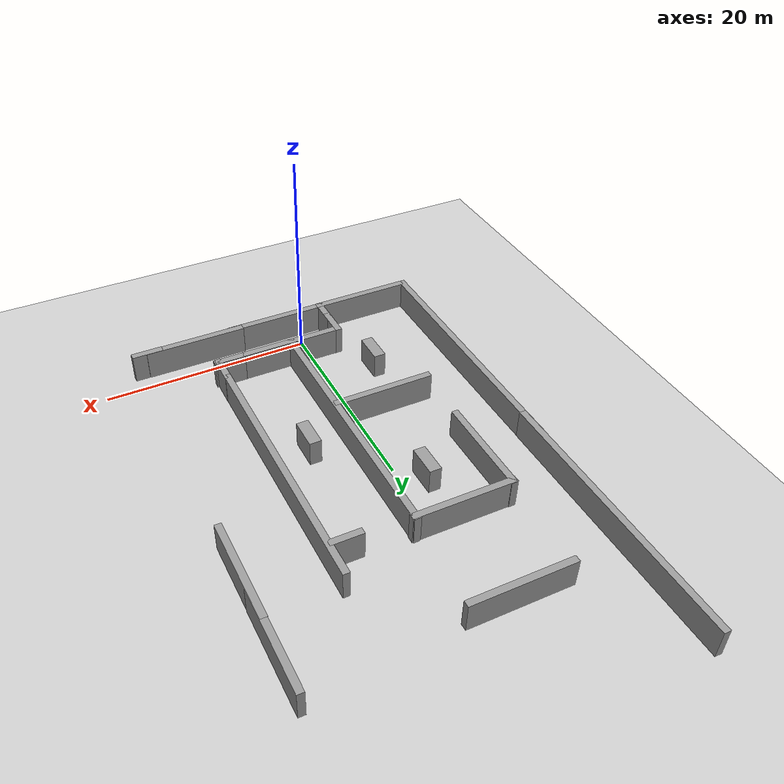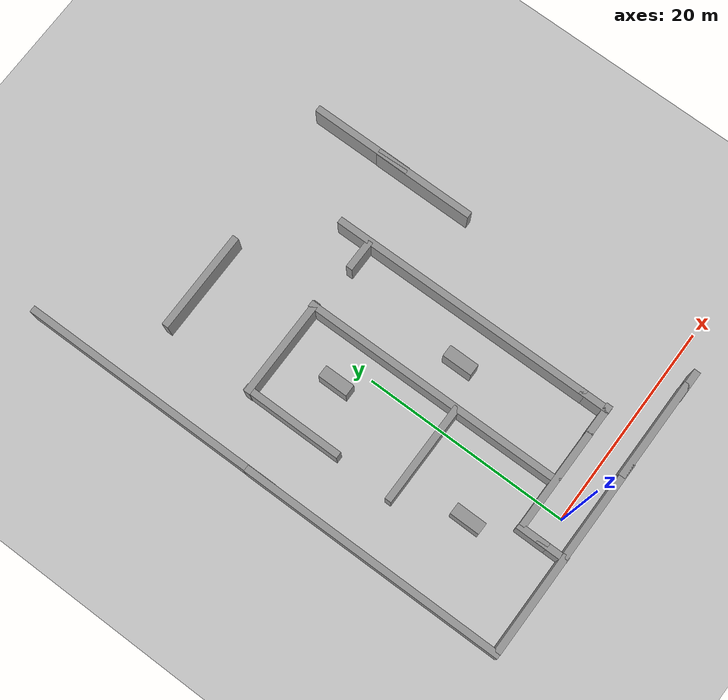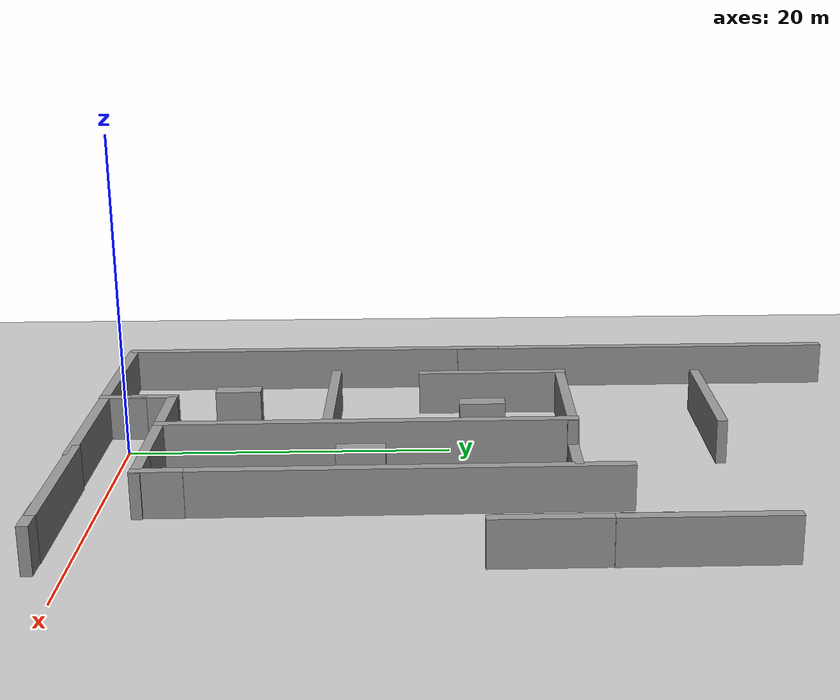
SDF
<sdf version="1.7">
 <world name="default">
  <model name="ground_plane">
   <static>1</static>
   <link name="link">
    <collision name="collision">
     <geometry><plane><normal>0 0 1</normal><size>100 100</size></plane></geometry>
     <surface><friction><ode><mu>100</mu><mu2>50</mu2></ode></friction></surface>
    </collision>
    <visual name="visual">
     <cast_shadows>0</cast_shadows>
     <geometry><plane><normal>0 0 1</normal><size>100 100</size></plane></geometry>
     <material>
      <script><uri>file://media/materials/scripts/gazebo.material</uri><name>Gazebo/Grey</name></script>
     </material>
    </visual>
   </link>
  </model>
  <model name="grey_wall_hou">
   <link name="link">
    <pose>0 0 1.37589 0 -0 0</pose>
    <inertial>
     <inertia><ixx>0</ixx><ixy>0</ixy><ixz>0</ixz><iyy>0</iyy><iyz>0</iyz><izz>0</izz></inertia>
     <mass>0</mass>
    </inertial>
    <visual name="visual">
     <cast_shadows>0</cast_shadows>
     <geometry><box><size>9.82221 0.642976 2.8</size></box></geometry>
     <material>
      <script>
       <uri>model://grey_wall/materials/scripts</uri>
       <uri>model://grey_wall/materials/textures</uri>
       <name>vrc/grey_wall</name>
      </script>
      <shader type="pixel"><normal_map>__default__</normal_map></shader>
      <ambient>1 1 1 1</ambient>
      <diffuse>1 1 1 1</diffuse>
      <specular>0 0 0 1</specular>
      <emissive>0 0 0 1</emissive>
     </material>
    </visual>
    <collision name="collision">
     <geometry><box><size>9.82221 0.642976 2.8</size></box></geometry>
     <surface>
      <friction>
       <ode><mu>1</mu><mu2>1</mu2><fdir1>0 0 0</fdir1><slip1>0</slip1><slip2>0</slip2></ode>
       <torsional>
        <coefficient>1</coefficient>
        <patch_radius>0</patch_radius>
        <surface_radius>0</surface_radius>
        <use_patch_radius>1</use_patch_radius>
        <ode><slip>0</slip></ode>
       </torsional>
      </friction>
      <bounce><restitution_coefficient>0</restitution_coefficient><threshold>1e+06</threshold></bounce>
      <contact>
       <collide_without_contact>0</collide_without_contact>
       <collide_without_contact_bitmask>1</collide_without_contact_bitmask>
       <collide_bitmask>1</collide_bitmask>
       <ode>
        <soft_cfm>0</soft_cfm>
        <soft_erp>0.2</soft_erp>
        <kp>1e+13</kp>
        <kd>1</kd>
        <max_vel>0.01</max_vel>
        <min_depth>0</min_depth>
       </ode>
       <bullet>
        <split_impulse>1</split_impulse>
        <split_impulse_penetration_threshold>-0.01</split_impulse_penetration_threshold>
        <soft_cfm>0</soft_cfm>
        <soft_erp>0.2</soft_erp>
        <kp>1e+13</kp>
        <kd>1</kd>
       </bullet>
      </contact>
     </surface>
    </collision>
   </link>
   <static>1</static>
   <pose>2.05548 -1.91312 0 0 -0 0</pose>
  </model>
  <model name="grey_wall_hou_clone_clone">
   <link name="link">
    <pose>0 0 1.37589 0 -0 0</pose>
    <inertial>
     <inertia><ixx>0</ixx><ixy>0</ixy><ixz>0</ixz><iyy>0</iyy><iyz>0</iyz><izz>0</izz></inertia>
     <mass>0</mass>
    </inertial>
    <visual name="visual">
     <cast_shadows>0</cast_shadows>
     <geometry><box><size>9.82221 0.642976 2.8</size></box></geometry>
     <material>
      <script>
       <uri>model://grey_wall/materials/scripts</uri>
       <uri>model://grey_wall/materials/textures</uri>
       <name>vrc/grey_wall</name>
      </script>
      <shader type="pixel"><normal_map>__default__</normal_map></shader>
      <ambient>1 1 1 1</ambient>
      <diffuse>1 1 1 1</diffuse>
      <specular>0 0 0 1</specular>
      <emissive>0 0 0 1</emissive>
     </material>
    </visual>
    <collision name="collision">
     <geometry><box><size>9.82221 0.642976 2.8</size></box></geometry>
     <surface>
      <friction>
       <ode><mu>1</mu><mu2>1</mu2><fdir1>0 0 0</fdir1><slip1>0</slip1><slip2>0</slip2></ode>
       <torsional>
        <coefficient>1</coefficient>
        <patch_radius>0</patch_radius>
        <surface_radius>0</surface_radius>
        <use_patch_radius>1</use_patch_radius>
        <ode><slip>0</slip></ode>
       </torsional>
      </friction>
      <bounce><restitution_coefficient>0</restitution_coefficient><threshold>1e+06</threshold></bounce>
      <contact>
       <collide_without_contact>0</collide_without_contact>
       <collide_without_contact_bitmask>1</collide_without_contact_bitmask>
       <collide_bitmask>1</collide_bitmask>
       <ode>
        <soft_cfm>0</soft_cfm>
        <soft_erp>0.2</soft_erp>
        <kp>1e+13</kp>
        <kd>1</kd>
        <max_vel>0.01</max_vel>
        <min_depth>0</min_depth>
       </ode>
       <bullet>
        <split_impulse>1</split_impulse>
        <split_impulse_penetration_threshold>-0.01</split_impulse_penetration_threshold>
        <soft_cfm>0</soft_cfm>
        <soft_erp>0.2</soft_erp>
        <kp>1e+13</kp>
        <kd>1</kd>
       </bullet>
      </contact>
     </surface>
    </collision>
   </link>
   <static>1</static>
   <pose>2.12702 2.37014 0 0 -0 0</pose>
  </model>
  <model name="grey_wall_short">
   <link name="link">
    <pose>0 0 1.37589 0 -0 0</pose>
    <inertial>
     <inertia><ixx>0</ixx><ixy>0</ixy><ixz>0</ixz><iyy>0</iyy><iyz>0</iyz><izz>0</izz></inertia>
     <mass>0</mass>
    </inertial>
    <visual name="visual">
     <cast_shadows>0</cast_shadows>
     <geometry><box><size>3.01651 0.642976 2.8</size></box></geometry>
     <material>
      <script>
       <uri>model://grey_wall/materials/scripts</uri>
       <uri>model://grey_wall/materials/textures</uri>
       <name>vrc/grey_wall</name>
      </script>
      <shader type="pixel"><normal_map>__default__</normal_map></shader>
      <ambient>1 1 1 1</ambient>
      <diffuse>1 1 1 1</diffuse>
      <specular>0 0 0 1</specular>
      <emissive>0 0 0 1</emissive>
     </material>
    </visual>
    <collision name="collision">
     <geometry><box><size>3.01651 0.642976 2.8</size></box></geometry>
     <surface>
      <friction>
       <ode><mu>1</mu><mu2>1</mu2><fdir1>0 0 0</fdir1><slip1>0</slip1><slip2>0</slip2></ode>
       <torsional>
        <coefficient>1</coefficient>
        <patch_radius>0</patch_radius>
        <surface_radius>0</surface_radius>
        <use_patch_radius>1</use_patch_radius>
        <ode><slip>0</slip></ode>
       </torsional>
      </friction>
      <bounce><restitution_coefficient>0</restitution_coefficient><threshold>1e+06</threshold></bounce>
      <contact>
       <collide_without_contact>0</collide_without_contact>
       <collide_without_contact_bitmask>1</collide_without_contact_bitmask>
       <collide_bitmask>1</collide_bitmask>
       <ode>
        <soft_cfm>0</soft_cfm>
        <soft_erp>0.2</soft_erp>
        <kp>1e+13</kp>
        <kd>1</kd>
        <max_vel>0.01</max_vel>
        <min_depth>0</min_depth>
       </ode>
       <bullet>
        <split_impulse>1</split_impulse>
        <split_impulse_penetration_threshold>-0.01</split_impulse_penetration_threshold>
        <soft_cfm>0</soft_cfm>
        <soft_erp>0.2</soft_erp>
        <kp>1e+13</kp>
        <kd>1</kd>
       </bullet>
      </contact>
     </surface>
    </collision>
   </link>
   <static>1</static>
   <pose>8.42725 2.39613 0 0 -0 0</pose>
  </model>
  <model name="grey_wall_short_clone">
   <link name="link">
    <pose>0 0 1.37589 0 -0 0</pose>
    <inertial>
     <inertia><ixx>0</ixx><ixy>0</ixy><ixz>0</ixz><iyy>0</iyy><iyz>0</iyz><izz>0</izz></inertia>
     <mass>0</mass>
    </inertial>
    <visual name="visual">
     <cast_shadows>0</cast_shadows>
     <geometry><box><size>3.01651 0.642976 2.8</size></box></geometry>
     <material>
      <script>
       <uri>model://grey_wall/materials/scripts</uri>
       <uri>model://grey_wall/materials/textures</uri>
       <name>vrc/grey_wall</name>
      </script>
      <shader type="pixel"><normal_map>__default__</normal_map></shader>
      <ambient>1 1 1 1</ambient>
      <diffuse>1 1 1 1</diffuse>
      <specular>0 0 0 1</specular>
      <emissive>0 0 0 1</emissive>
     </material>
    </visual>
    <collision name="collision">
     <geometry><box><size>3.01651 0.642976 2.8</size></box></geometry>
     <surface>
      <friction>
       <ode><mu>1</mu><mu2>1</mu2><fdir1>0 0 0</fdir1><slip1>0</slip1><slip2>0</slip2></ode>
       <torsional>
        <coefficient>1</coefficient>
        <patch_radius>0</patch_radius>
        <surface_radius>0</surface_radius>
        <use_patch_radius>1</use_patch_radius>
        <ode><slip>0</slip></ode>
       </torsional>
      </friction>
      <bounce><restitution_coefficient>0</restitution_coefficient><threshold>1e+06</threshold></bounce>
      <contact>
       <collide_without_contact>0</collide_without_contact>
       <collide_without_contact_bitmask>1</collide_without_contact_bitmask>
       <collide_bitmask>1</collide_bitmask>
       <ode>
        <soft_cfm>0</soft_cfm>
        <soft_erp>0.2</soft_erp>
        <kp>1e+13</kp>
        <kd>1</kd>
        <max_vel>0.01</max_vel>
        <min_depth>0</min_depth>
       </ode>
       <bullet>
        <split_impulse>1</split_impulse>
        <split_impulse_penetration_threshold>-0.01</split_impulse_penetration_threshold>
        <soft_cfm>0</soft_cfm>
        <soft_erp>0.2</soft_erp>
        <kp>1e+13</kp>
        <kd>1</kd>
       </bullet>
      </contact>
     </surface>
    </collision>
   </link>
   <static>1</static>
   <pose>7.84417 27.1476 0 0 -0 0</pose>
  </model>
  <model name="grey_wall_short_0_clone_1">
   <link name="link">
    <pose>0 0 1.37589 0 -0 0</pose>
    <inertial>
     <inertia><ixx>0</ixx><ixy>0</ixy><ixz>0</ixz><iyy>0</iyy><iyz>0</iyz><izz>0</izz></inertia>
     <mass>0</mass>
    </inertial>
    <visual name="visual">
     <cast_shadows>0</cast_shadows>
     <geometry><box><size>3.01651 0.642976 2.8</size></box></geometry>
     <material>
      <script>
       <uri>model://grey_wall/materials/scripts</uri>
       <uri>model://grey_wall/materials/textures</uri>
       <name>vrc/grey_wall</name>
      </script>
      <shader type="pixel"><normal_map>__default__</normal_map></shader>
      <ambient>1 1 1 1</ambient>
      <diffuse>1 1 1 1</diffuse>
      <specular>0 0 0 1</specular>
      <emissive>0 0 0 1</emissive>
     </material>
    </visual>
    <collision name="collision">
     <geometry><box><size>3.01651 0.642976 2.8</size></box></geometry>
     <surface>
      <friction>
       <ode><mu>1</mu><mu2>1</mu2><fdir1>0 0 0</fdir1><slip1>0</slip1><slip2>0</slip2></ode>
       <torsional>
        <coefficient>1</coefficient>
        <patch_radius>0</patch_radius>
        <surface_radius>0</surface_radius>
        <use_patch_radius>1</use_patch_radius>
        <ode><slip>0</slip></ode>
       </torsional>
      </friction>
      <bounce><restitution_coefficient>0</restitution_coefficient><threshold>1e+06</threshold></bounce>
      <contact>
       <collide_without_contact>0</collide_without_contact>
       <collide_without_contact_bitmask>1</collide_without_contact_bitmask>
       <collide_bitmask>1</collide_bitmask>
       <ode>
        <soft_cfm>0</soft_cfm>
        <soft_erp>0.2</soft_erp>
        <kp>1e+13</kp>
        <kd>1</kd>
        <max_vel>0.01</max_vel>
        <min_depth>0</min_depth>
       </ode>
       <bullet>
        <split_impulse>1</split_impulse>
        <split_impulse_penetration_threshold>-0.01</split_impulse_penetration_threshold>
        <soft_cfm>0</soft_cfm>
        <soft_erp>0.2</soft_erp>
        <kp>1e+13</kp>
        <kd>1</kd>
       </bullet>
      </contact>
     </surface>
    </collision>
   </link>
   <static>1</static>
   <pose>9.47315 3.55431 0 0 0 -1.57204</pose>
  </model>
  <model name="grey_wall_long_clone_0_clone_0">
   <link name="link">
    <pose>0 0 1.37589 0 -0 0</pose>
    <inertial>
     <inertia><ixx>0</ixx><ixy>0</ixy><ixz>0</ixz><iyy>0</iyy><iyz>0</iyz><izz>0</izz></inertia>
     <mass>0</mass>
    </inertial>
    <visual name="visual">
     <cast_shadows>0</cast_shadows>
     <geometry><box><size>25.8815 0.642976 2.8</size></box></geometry>
     <material>
      <script>
       <uri>model://grey_wall/materials/scripts</uri>
       <uri>model://grey_wall/materials/textures</uri>
       <name>vrc/grey_wall</name>
      </script>
      <shader type="pixel"><normal_map>__default__</normal_map></shader>
      <ambient>1 1 1 1</ambient>
      <diffuse>1 1 1 1</diffuse>
      <specular>0 0 0 1</specular>
      <emissive>0 0 0 1</emissive>
     </material>
    </visual>
    <collision name="collision">
     <geometry><box><size>25.8815 0.642976 2.8</size></box></geometry>
     <surface>
      <friction>
       <ode><mu>1</mu><mu2>1</mu2><fdir1>0 0 0</fdir1><slip1>0</slip1><slip2>0</slip2></ode>
       <torsional>
        <coefficient>1</coefficient>
        <patch_radius>0</patch_radius>
        <surface_radius>0</surface_radius>
        <use_patch_radius>1</use_patch_radius>
        <ode><slip>0</slip></ode>
       </torsional>
      </friction>
      <bounce><restitution_coefficient>0</restitution_coefficient><threshold>1e+06</threshold></bounce>
      <contact>
       <collide_without_contact>0</collide_without_contact>
       <collide_without_contact_bitmask>1</collide_without_contact_bitmask>
       <collide_bitmask>1</collide_bitmask>
       <ode>
        <soft_cfm>0</soft_cfm>
        <soft_erp>0.2</soft_erp>
        <kp>1e+13</kp>
        <kd>1</kd>
        <max_vel>0.01</max_vel>
        <min_depth>0</min_depth>
       </ode>
       <bullet>
        <split_impulse>1</split_impulse>
        <split_impulse_penetration_threshold>-0.01</split_impulse_penetration_threshold>
        <soft_cfm>0</soft_cfm>
        <soft_erp>0.2</soft_erp>
        <kp>1e+13</kp>
        <kd>1</kd>
       </bullet>
      </contact>
     </surface>
    </collision>
   </link>
   <static>1</static>
   <pose>-12.5138 10.6927 0 0 0 -1.5658</pose>
  </model>
  <model name="grey_wall_long_clone_0_clone_0_clone">
   <link name="link">
    <pose>0 0 1.37589 0 -0 0</pose>
    <inertial>
     <inertia><ixx>0</ixx><ixy>0</ixy><ixz>0</ixz><iyy>0</iyy><iyz>0</iyz><izz>0</izz></inertia>
     <mass>0</mass>
    </inertial>
    <visual name="visual">
     <cast_shadows>0</cast_shadows>
     <geometry><box><size>25.8815 0.642976 2.8</size></box></geometry>
     <material>
      <script>
       <uri>model://grey_wall/materials/scripts</uri>
       <uri>model://grey_wall/materials/textures</uri>
       <name>vrc/grey_wall</name>
      </script>
      <shader type="pixel"><normal_map>__default__</normal_map></shader>
      <ambient>1 1 1 1</ambient>
      <diffuse>1 1 1 1</diffuse>
      <specular>0 0 0 1</specular>
      <emissive>0 0 0 1</emissive>
     </material>
    </visual>
    <collision name="collision">
     <geometry><box><size>25.8815 0.642976 2.8</size></box></geometry>
     <surface>
      <friction>
       <ode><mu>1</mu><mu2>1</mu2><fdir1>0 0 0</fdir1><slip1>0</slip1><slip2>0</slip2></ode>
       <torsional>
        <coefficient>1</coefficient>
        <patch_radius>0</patch_radius>
        <surface_radius>0</surface_radius>
        <use_patch_radius>1</use_patch_radius>
        <ode><slip>0</slip></ode>
       </torsional>
      </friction>
      <bounce><restitution_coefficient>0</restitution_coefficient><threshold>1e+06</threshold></bounce>
      <contact>
       <collide_without_contact>0</collide_without_contact>
       <collide_without_contact_bitmask>1</collide_without_contact_bitmask>
       <collide_bitmask>1</collide_bitmask>
       <ode>
        <soft_cfm>0</soft_cfm>
        <soft_erp>0.2</soft_erp>
        <kp>1e+13</kp>
        <kd>1</kd>
        <max_vel>0.01</max_vel>
        <min_depth>0</min_depth>
       </ode>
       <bullet>
        <split_impulse>1</split_impulse>
        <split_impulse_penetration_threshold>-0.01</split_impulse_penetration_threshold>
        <soft_cfm>0</soft_cfm>
        <soft_erp>0.2</soft_erp>
        <kp>1e+13</kp>
        <kd>1</kd>
       </bullet>
      </contact>
     </surface>
    </collision>
   </link>
   <static>1</static>
   <pose>9.39866 17.4791 0 0 0 -1.5658</pose>
  </model>
  <model name="grey_wall_hou_clone">
   <link name="link">
    <pose>0 0 1.37589 0 -0 0</pose>
    <inertial>
     <inertia><ixx>0</ixx><ixy>0</ixy><ixz>0</ixz><iyy>0</iyy><iyz>0</iyz><izz>0</izz></inertia>
     <mass>0</mass>
    </inertial>
    <visual name="visual">
     <cast_shadows>0</cast_shadows>
     <geometry><box><size>9.82221 0.642976 2.8</size></box></geometry>
     <material>
      <script>
       <uri>model://grey_wall/materials/scripts</uri>
       <uri>model://grey_wall/materials/textures</uri>
       <name>vrc/grey_wall</name>
      </script>
      <shader type="pixel"><normal_map>__default__</normal_map></shader>
      <ambient>1 1 1 1</ambient>
      <diffuse>1 1 1 1</diffuse>
      <specular>0 0 0 1</specular>
      <emissive>0 0 0 1</emissive>
     </material>
    </visual>
    <collision name="collision">
     <geometry><box><size>9.82221 0.642976 2.8</size></box></geometry>
     <surface>
      <friction>
       <ode><mu>1</mu><mu2>1</mu2><fdir1>0 0 0</fdir1><slip1>0</slip1><slip2>0</slip2></ode>
       <torsional>
        <coefficient>1</coefficient>
        <patch_radius>0</patch_radius>
        <surface_radius>0</surface_radius>
        <use_patch_radius>1</use_patch_radius>
        <ode><slip>0</slip></ode>
       </torsional>
      </friction>
      <bounce><restitution_coefficient>0</restitution_coefficient><threshold>1e+06</threshold></bounce>
      <contact>
       <collide_without_contact>0</collide_without_contact>
       <collide_without_contact_bitmask>1</collide_without_contact_bitmask>
       <collide_bitmask>1</collide_bitmask>
       <ode>
        <soft_cfm>0</soft_cfm>
        <soft_erp>0.2</soft_erp>
        <kp>1e+13</kp>
        <kd>1</kd>
        <max_vel>0.01</max_vel>
        <min_depth>0</min_depth>
       </ode>
       <bullet>
        <split_impulse>1</split_impulse>
        <split_impulse_penetration_threshold>-0.01</split_impulse_penetration_threshold>
        <soft_cfm>0</soft_cfm>
        <soft_erp>0.2</soft_erp>
        <kp>1e+13</kp>
        <kd>1</kd>
       </bullet>
      </contact>
     </surface>
    </collision>
   </link>
   <static>1</static>
   <pose>-7.44149 -1.94811 0 0 -0 0</pose>
  </model>
  <model name="grey_wall_short_0_clone_1_clone_0">
   <link name="link">
    <pose>0 0 1.37589 0 -0 0</pose>
    <inertial>
     <inertia><ixx>0</ixx><ixy>0</ixy><ixz>0</ixz><iyy>0</iyy><iyz>0</iyz><izz>0</izz></inertia>
     <mass>0</mass>
    </inertial>
    <visual name="visual">
     <cast_shadows>0</cast_shadows>
     <geometry><box><size>3.01651 0.642976 2.8</size></box></geometry>
     <material>
      <script>
       <uri>model://grey_wall/materials/scripts</uri>
       <uri>model://grey_wall/materials/textures</uri>
       <name>vrc/grey_wall</name>
      </script>
      <shader type="pixel"><normal_map>__default__</normal_map></shader>
      <ambient>1 1 1 1</ambient>
      <diffuse>1 1 1 1</diffuse>
      <specular>0 0 0 1</specular>
      <emissive>0 0 0 1</emissive>
     </material>
    </visual>
    <collision name="collision">
     <geometry><box><size>3.01651 0.642976 2.8</size></box></geometry>
     <surface>
      <friction>
       <ode><mu>1</mu><mu2>1</mu2><fdir1>0 0 0</fdir1><slip1>0</slip1><slip2>0</slip2></ode>
       <torsional>
        <coefficient>1</coefficient>
        <patch_radius>0</patch_radius>
        <surface_radius>0</surface_radius>
        <use_patch_radius>1</use_patch_radius>
        <ode><slip>0</slip></ode>
       </torsional>
      </friction>
      <bounce><restitution_coefficient>0</restitution_coefficient><threshold>1e+06</threshold></bounce>
      <contact>
       <collide_without_contact>0</collide_without_contact>
       <collide_without_contact_bitmask>1</collide_without_contact_bitmask>
       <collide_bitmask>1</collide_bitmask>
       <ode>
        <soft_cfm>0</soft_cfm>
        <soft_erp>0.2</soft_erp>
        <kp>1e+13</kp>
        <kd>1</kd>
        <max_vel>0.01</max_vel>
        <min_depth>0</min_depth>
       </ode>
       <bullet>
        <split_impulse>1</split_impulse>
        <split_impulse_penetration_threshold>-0.01</split_impulse_penetration_threshold>
        <soft_cfm>0</soft_cfm>
        <soft_erp>0.2</soft_erp>
        <kp>1e+13</kp>
        <kd>1</kd>
       </bullet>
      </contact>
     </surface>
    </collision>
   </link>
   <static>1</static>
   <pose>-2.88969 1.20993 0 0 0 -1.57204</pose>
  </model>
  <model name="grey_wall_short_0_clone_1_clone_1">
   <link name="link">
    <pose>0 0 1.37589 0 -0 0</pose>
    <inertial>
     <inertia><ixx>0</ixx><ixy>0</ixy><ixz>0</ixz><iyy>0</iyy><iyz>0</iyz><izz>0</izz></inertia>
     <mass>0</mass>
    </inertial>
    <visual name="visual">
     <cast_shadows>0</cast_shadows>
     <geometry><box><size>3.01651 0.642976 2.8</size></box></geometry>
     <material>
      <script>
       <uri>model://grey_wall/materials/scripts</uri>
       <uri>model://grey_wall/materials/textures</uri>
       <name>vrc/grey_wall</name>
      </script>
      <shader type="pixel"><normal_map>__default__</normal_map></shader>
      <ambient>1 1 1 1</ambient>
      <diffuse>1 1 1 1</diffuse>
      <specular>0 0 0 1</specular>
      <emissive>0 0 0 1</emissive>
     </material>
    </visual>
    <collision name="collision">
     <geometry><box><size>3.01651 0.642976 2.8</size></box></geometry>
     <surface>
      <friction>
       <ode><mu>1</mu><mu2>1</mu2><fdir1>0 0 0</fdir1><slip1>0</slip1><slip2>0</slip2></ode>
       <torsional>
        <coefficient>1</coefficient>
        <patch_radius>0</patch_radius>
        <surface_radius>0</surface_radius>
        <use_patch_radius>1</use_patch_radius>
        <ode><slip>0</slip></ode>
       </torsional>
      </friction>
      <bounce><restitution_coefficient>0</restitution_coefficient><threshold>1e+06</threshold></bounce>
      <contact>
       <collide_without_contact>0</collide_without_contact>
       <collide_without_contact_bitmask>1</collide_without_contact_bitmask>
       <collide_bitmask>1</collide_bitmask>
       <ode>
        <soft_cfm>0</soft_cfm>
        <soft_erp>0.2</soft_erp>
        <kp>1e+13</kp>
        <kd>1</kd>
        <max_vel>0.01</max_vel>
        <min_depth>0</min_depth>
       </ode>
       <bullet>
        <split_impulse>1</split_impulse>
        <split_impulse_penetration_threshold>-0.01</split_impulse_penetration_threshold>
        <soft_cfm>0</soft_cfm>
        <soft_erp>0.2</soft_erp>
        <kp>1e+13</kp>
        <kd>1</kd>
       </bullet>
      </contact>
     </surface>
    </collision>
   </link>
   <static>1</static>
   <pose>-2.88201 -0.774232 0 0 0 -1.57204</pose>
  </model>
  <model name="grey_wall_long_clone_0_clone_0_clone_clone_0">
   <link name="link">
    <pose>0 0 1.37589 0 -0 0</pose>
    <inertial>
     <inertia><ixx>0</ixx><ixy>0</ixy><ixz>0</ixz><iyy>0</iyy><iyz>0</iyz><izz>0</izz></inertia>
     <mass>0</mass>
    </inertial>
    <visual name="visual">
     <cast_shadows>0</cast_shadows>
     <geometry><box><size>25.8815 0.642976 2.8</size></box></geometry>
     <material>
      <script>
       <uri>model://grey_wall/materials/scripts</uri>
       <uri>model://grey_wall/materials/textures</uri>
       <name>vrc/grey_wall</name>
      </script>
      <shader type="pixel"><normal_map>__default__</normal_map></shader>
      <ambient>1 1 1 1</ambient>
      <diffuse>1 1 1 1</diffuse>
      <specular>0 0 0 1</specular>
      <emissive>0 0 0 1</emissive>
     </material>
    </visual>
    <collision name="collision">
     <geometry><box><size>25.8815 0.642976 2.8</size></box></geometry>
     <surface>
      <friction>
       <ode><mu>1</mu><mu2>1</mu2><fdir1>0 0 0</fdir1><slip1>0</slip1><slip2>0</slip2></ode>
       <torsional>
        <coefficient>1</coefficient>
        <patch_radius>0</patch_radius>
        <surface_radius>0</surface_radius>
        <use_patch_radius>1</use_patch_radius>
        <ode><slip>0</slip></ode>
       </torsional>
      </friction>
      <bounce><restitution_coefficient>0</restitution_coefficient><threshold>1e+06</threshold></bounce>
      <contact>
       <collide_without_contact>0</collide_without_contact>
       <collide_without_contact_bitmask>1</collide_without_contact_bitmask>
       <collide_bitmask>1</collide_bitmask>
       <ode>
        <soft_cfm>0</soft_cfm>
        <soft_erp>0.2</soft_erp>
        <kp>1e+13</kp>
        <kd>1</kd>
        <max_vel>0.01</max_vel>
        <min_depth>0</min_depth>
       </ode>
       <bullet>
        <split_impulse>1</split_impulse>
        <split_impulse_penetration_threshold>-0.01</split_impulse_penetration_threshold>
        <soft_cfm>0</soft_cfm>
        <soft_erp>0.2</soft_erp>
        <kp>1e+13</kp>
        <kd>1</kd>
       </bullet>
      </contact>
     </surface>
    </collision>
   </link>
   <static>1</static>
   <pose>-12.6023 33.7046 0 0 0 -1.5658</pose>
  </model>
  <model name="grey_wall_long_clone_0_clone_0_clone_clone_0_clone">
   <link name="link">
    <pose>0 0 1.37589 0 -0 0</pose>
    <inertial>
     <inertia><ixx>0</ixx><ixy>0</ixy><ixz>0</ixz><iyy>0</iyy><iyz>0</iyz><izz>0</izz></inertia>
     <mass>0</mass>
    </inertial>
    <visual name="visual">
     <cast_shadows>0</cast_shadows>
     <geometry><box><size>25.8815 0.642976 2.8</size></box></geometry>
     <material>
      <script>
       <uri>model://grey_wall/materials/scripts</uri>
       <uri>model://grey_wall/materials/textures</uri>
       <name>vrc/grey_wall</name>
      </script>
      <shader type="pixel"><normal_map>__default__</normal_map></shader>
      <ambient>1 1 1 1</ambient>
      <diffuse>1 1 1 1</diffuse>
      <specular>0 0 0 1</specular>
      <emissive>0 0 0 1</emissive>
     </material>
    </visual>
    <collision name="collision">
     <geometry><box><size>25.8815 0.642976 2.8</size></box></geometry>
     <surface>
      <friction>
       <ode><mu>1</mu><mu2>1</mu2><fdir1>0 0 0</fdir1><slip1>0</slip1><slip2>0</slip2></ode>
       <torsional>
        <coefficient>1</coefficient>
        <patch_radius>0</patch_radius>
        <surface_radius>0</surface_radius>
        <use_patch_radius>1</use_patch_radius>
        <ode><slip>0</slip></ode>
       </torsional>
      </friction>
      <bounce><restitution_coefficient>0</restitution_coefficient><threshold>1e+06</threshold></bounce>
      <contact>
       <collide_without_contact>0</collide_without_contact>
       <collide_without_contact_bitmask>1</collide_without_contact_bitmask>
       <collide_bitmask>1</collide_bitmask>
       <ode>
        <soft_cfm>0</soft_cfm>
        <soft_erp>0.2</soft_erp>
        <kp>1e+13</kp>
        <kd>1</kd>
        <max_vel>0.01</max_vel>
        <min_depth>0</min_depth>
       </ode>
       <bullet>
        <split_impulse>1</split_impulse>
        <split_impulse_penetration_threshold>-0.01</split_impulse_penetration_threshold>
        <soft_cfm>0</soft_cfm>
        <soft_erp>0.2</soft_erp>
        <kp>1e+13</kp>
        <kd>1</kd>
       </bullet>
      </contact>
     </surface>
    </collision>
   </link>
   <static>1</static>
   <pose>1.97329 14.9913 0 0 0 -1.5658</pose>
  </model>
  <model name="grey_wall_hou_clone_clone_clone_4_clone_clone_clone_clone_0">
   <link name="link">
    <pose>0 0 1.37589 0 -0 0</pose>
    <inertial>
     <inertia><ixx>0</ixx><ixy>0</ixy><ixz>0</ixz><iyy>0</iyy><iyz>0</iyz><izz>0</izz></inertia>
     <mass>0</mass>
    </inertial>
    <visual name="visual">
     <cast_shadows>0</cast_shadows>
     <geometry><box><size>9.82221 0.642976 2.8</size></box></geometry>
     <material>
      <script>
       <uri>model://grey_wall/materials/scripts</uri>
       <uri>model://grey_wall/materials/textures</uri>
       <name>vrc/grey_wall</name>
      </script>
      <shader type="pixel"><normal_map>__default__</normal_map></shader>
      <ambient>1 1 1 1</ambient>
      <diffuse>1 1 1 1</diffuse>
      <specular>0 0 0 1</specular>
      <emissive>0 0 0 1</emissive>
     </material>
    </visual>
    <collision name="collision">
     <geometry><box><size>9.82221 0.642976 2.8</size></box></geometry>
     <surface>
      <friction>
       <ode><mu>1</mu><mu2>1</mu2><fdir1>0 0 0</fdir1><slip1>0</slip1><slip2>0</slip2></ode>
       <torsional>
        <coefficient>1</coefficient>
        <patch_radius>0</patch_radius>
        <surface_radius>0</surface_radius>
        <use_patch_radius>1</use_patch_radius>
        <ode><slip>0</slip></ode>
       </torsional>
      </friction>
      <bounce><restitution_coefficient>0</restitution_coefficient><threshold>1e+06</threshold></bounce>
      <contact>
       <collide_without_contact>0</collide_without_contact>
       <collide_without_contact_bitmask>1</collide_without_contact_bitmask>
       <collide_bitmask>1</collide_bitmask>
       <ode>
        <soft_cfm>0</soft_cfm>
        <soft_erp>0.2</soft_erp>
        <kp>1e+13</kp>
        <kd>1</kd>
        <max_vel>0.01</max_vel>
        <min_depth>0</min_depth>
       </ode>
       <bullet>
        <split_impulse>1</split_impulse>
        <split_impulse_penetration_threshold>-0.01</split_impulse_penetration_threshold>
        <soft_cfm>0</soft_cfm>
        <soft_erp>0.2</soft_erp>
        <kp>1e+13</kp>
        <kd>1</kd>
       </bullet>
      </contact>
     </surface>
    </collision>
   </link>
   <static>1</static>
   <pose>-2.78869 12.5468 0 0 -0 0</pose>
  </model>
  <model name="grey_wall_hou_clone_clone_clone_4_clone_clone_clone_clone_1">
   <link name="link">
    <pose>0 0 1.37589 0 -0 0</pose>
    <inertial>
     <inertia><ixx>0</ixx><ixy>0</ixy><ixz>0</ixz><iyy>0</iyy><iyz>0</iyz><izz>0</izz></inertia>
     <mass>0</mass>
    </inertial>
    <visual name="visual">
     <cast_shadows>0</cast_shadows>
     <geometry><box><size>9.82221 0.642976 2.8</size></box></geometry>
     <material>
      <script>
       <uri>model://grey_wall/materials/scripts</uri>
       <uri>model://grey_wall/materials/textures</uri>
       <name>vrc/grey_wall</name>
      </script>
      <shader type="pixel"><normal_map>__default__</normal_map></shader>
      <ambient>1 1 1 1</ambient>
      <diffuse>1 1 1 1</diffuse>
      <specular>0 0 0 1</specular>
      <emissive>0 0 0 1</emissive>
     </material>
    </visual>
    <collision name="collision">
     <geometry><box><size>9.82221 0.642976 2.8</size></box></geometry>
     <surface>
      <friction>
       <ode><mu>1</mu><mu2>1</mu2><fdir1>0 0 0</fdir1><slip1>0</slip1><slip2>0</slip2></ode>
       <torsional>
        <coefficient>1</coefficient>
        <patch_radius>0</patch_radius>
        <surface_radius>0</surface_radius>
        <use_patch_radius>1</use_patch_radius>
        <ode><slip>0</slip></ode>
       </torsional>
      </friction>
      <bounce><restitution_coefficient>0</restitution_coefficient><threshold>1e+06</threshold></bounce>
      <contact>
       <collide_without_contact>0</collide_without_contact>
       <collide_without_contact_bitmask>1</collide_without_contact_bitmask>
       <collide_bitmask>1</collide_bitmask>
       <ode>
        <soft_cfm>0</soft_cfm>
        <soft_erp>0.2</soft_erp>
        <kp>1e+13</kp>
        <kd>1</kd>
        <max_vel>0.01</max_vel>
        <min_depth>0</min_depth>
       </ode>
       <bullet>
        <split_impulse>1</split_impulse>
        <split_impulse_penetration_threshold>-0.01</split_impulse_penetration_threshold>
        <soft_cfm>0</soft_cfm>
        <soft_erp>0.2</soft_erp>
        <kp>1e+13</kp>
        <kd>1</kd>
       </bullet>
      </contact>
     </surface>
    </collision>
   </link>
   <static>1</static>
   <pose>-2.5977 27.5209 0 0 -0 0</pose>
  </model>
  <model name="unit_box_clone_2_clone_0_clone_1_clone_1">
   <pose>-4.88583 6.32527 1.23849 4e-06 -0 -0.004069</pose>
   <link name="link">
    <inertial>
     <mass>1</mass>
     <inertia>
      <ixx>0.166667</ixx>
      <ixy>0</ixy>
      <ixz>0</ixz>
      <iyy>0.166667</iyy>
      <iyz>0</iyz>
      <izz>0.166667</izz>
     </inertia>
    </inertial>
    <collision name="collision"><geometry><box><size>1.12952 2.91492 2.47699</size></box></geometry></collision>
    <visual name="visual">
     <geometry><box><size>1.12952 2.91492 2.47699</size></box></geometry>
     <material>
      <script><name>Gazebo/Grey</name><uri>file://media/materials/scripts/gazebo.material</uri></script>
     </material>
    </visual>
   </link>
  </model>
  <model name="grey_wall_short_clone_0">
   <link name="link">
    <pose>0 0 1.37589 0 -0 0</pose>
    <inertial>
     <inertia><ixx>0</ixx><ixy>0</ixy><ixz>0</ixz><iyy>0</iyy><iyz>0</iyz><izz>0</izz></inertia>
     <mass>0</mass>
    </inertial>
    <visual name="visual">
     <cast_shadows>0</cast_shadows>
     <geometry><box><size>3.01651 0.642976 2.8</size></box></geometry>
     <material>
      <script>
       <uri>model://grey_wall/materials/scripts</uri>
       <uri>model://grey_wall/materials/textures</uri>
       <name>vrc/grey_wall</name>
      </script>
      <shader type="pixel"><normal_map>__default__</normal_map></shader>
      <ambient>1 1 1 1</ambient>
      <diffuse>1 1 1 1</diffuse>
      <specular>0 0 0 1</specular>
      <emissive>0 0 0 1</emissive>
     </material>
    </visual>
    <collision name="collision">
     <geometry><box><size>3.01651 0.642976 2.8</size></box></geometry>
     <surface>
      <friction>
       <ode><mu>1</mu><mu2>1</mu2><fdir1>0 0 0</fdir1><slip1>0</slip1><slip2>0</slip2></ode>
       <torsional>
        <coefficient>1</coefficient>
        <patch_radius>0</patch_radius>
        <surface_radius>0</surface_radius>
        <use_patch_radius>1</use_patch_radius>
        <ode><slip>0</slip></ode>
       </torsional>
      </friction>
      <bounce><restitution_coefficient>0</restitution_coefficient><threshold>1e+06</threshold></bounce>
      <contact>
       <collide_without_contact>0</collide_without_contact>
       <collide_without_contact_bitmask>1</collide_without_contact_bitmask>
       <collide_bitmask>1</collide_bitmask>
       <ode>
        <soft_cfm>0</soft_cfm>
        <soft_erp>0.2</soft_erp>
        <kp>1e+13</kp>
        <kd>1</kd>
        <max_vel>0.01</max_vel>
        <min_depth>0</min_depth>
       </ode>
       <bullet>
        <split_impulse>1</split_impulse>
        <split_impulse_penetration_threshold>-0.01</split_impulse_penetration_threshold>
        <soft_cfm>0</soft_cfm>
        <soft_erp>0.2</soft_erp>
        <kp>1e+13</kp>
        <kd>1</kd>
       </bullet>
      </contact>
     </surface>
    </collision>
   </link>
   <static>1</static>
   <pose>15.2267 -1.88807 0 0 -0 0</pose>
  </model>
  <model name="grey_wall_hou_clone_clone_3_clone_0_clone_1_clone_2_clone">
   <link name="link">
    <pose>0 0 1.37589 0 -0 0</pose>
    <inertial>
     <inertia><ixx>0</ixx><ixy>0</ixy><ixz>0</ixz><iyy>0</iyy><iyz>0</iyz><izz>0</izz></inertia>
     <mass>0</mass>
    </inertial>
    <visual name="visual">
     <cast_shadows>0</cast_shadows>
     <geometry><box><size>9.82221 0.642976 2.8</size></box></geometry>
     <material>
      <script>
       <uri>model://grey_wall/materials/scripts</uri>
       <uri>model://grey_wall/materials/textures</uri>
       <name>vrc/grey_wall</name>
      </script>
      <shader type="pixel"><normal_map>__default__</normal_map></shader>
      <ambient>1 1 1 1</ambient>
      <diffuse>1 1 1 1</diffuse>
      <specular>0 0 0 1</specular>
      <emissive>0 0 0 1</emissive>
     </material>
    </visual>
    <collision name="collision">
     <geometry><box><size>9.82221 0.642976 2.8</size></box></geometry>
     <surface>
      <friction>
       <ode><mu>1</mu><mu2>1</mu2><fdir1>0 0 0</fdir1><slip1>0</slip1><slip2>0</slip2></ode>
       <torsional>
        <coefficient>1</coefficient>
        <patch_radius>0</patch_radius>
        <surface_radius>0</surface_radius>
        <use_patch_radius>1</use_patch_radius>
        <ode><slip>0</slip></ode>
       </torsional>
      </friction>
      <bounce><restitution_coefficient>0</restitution_coefficient><threshold>1e+06</threshold></bounce>
      <contact>
       <collide_without_contact>0</collide_without_contact>
       <collide_without_contact_bitmask>1</collide_without_contact_bitmask>
       <collide_bitmask>1</collide_bitmask>
       <ode>
        <soft_cfm>0</soft_cfm>
        <soft_erp>0.2</soft_erp>
        <kp>1e+13</kp>
        <kd>1</kd>
        <max_vel>0.01</max_vel>
        <min_depth>0</min_depth>
       </ode>
       <bullet>
        <split_impulse>1</split_impulse>
        <split_impulse_penetration_threshold>-0.01</split_impulse_penetration_threshold>
        <soft_cfm>0</soft_cfm>
        <soft_erp>0.2</soft_erp>
        <kp>1e+13</kp>
        <kd>1</kd>
       </bullet>
      </contact>
     </surface>
    </collision>
   </link>
   <static>1</static>
   <pose>16.3827 33.2449 0 0 0 -1.56855</pose>
  </model>
  <model name="grey_wall_hou_clone_clone_clone_4_clone_clone_clone_clone_1_clone">
   <link name="link">
    <pose>0 0 1.37589 0 -0 0</pose>
    <inertial>
     <inertia><ixx>0</ixx><ixy>0</ixy><ixz>0</ixz><iyy>0</iyy><iyz>0</iyz><izz>0</izz></inertia>
     <mass>0</mass>
    </inertial>
    <visual name="visual">
     <cast_shadows>0</cast_shadows>
     <geometry><box><size>9.82221 0.642976 2.8</size></box></geometry>
     <material>
      <script>
       <uri>model://grey_wall/materials/scripts</uri>
       <uri>model://grey_wall/materials/textures</uri>
       <name>vrc/grey_wall</name>
      </script>
      <shader type="pixel"><normal_map>__default__</normal_map></shader>
      <ambient>1 1 1 1</ambient>
      <diffuse>1 1 1 1</diffuse>
      <specular>0 0 0 1</specular>
      <emissive>0 0 0 1</emissive>
     </material>
    </visual>
    <collision name="collision">
     <geometry><box><size>9.82221 0.642976 2.8</size></box></geometry>
     <surface>
      <friction>
       <ode><mu>1</mu><mu2>1</mu2><fdir1>0 0 0</fdir1><slip1>0</slip1><slip2>0</slip2></ode>
       <torsional>
        <coefficient>1</coefficient>
        <patch_radius>0</patch_radius>
        <surface_radius>0</surface_radius>
        <use_patch_radius>1</use_patch_radius>
        <ode><slip>0</slip></ode>
       </torsional>
      </friction>
      <bounce><restitution_coefficient>0</restitution_coefficient><threshold>1e+06</threshold></bounce>
      <contact>
       <collide_without_contact>0</collide_without_contact>
       <collide_without_contact_bitmask>1</collide_without_contact_bitmask>
       <collide_bitmask>1</collide_bitmask>
       <ode>
        <soft_cfm>0</soft_cfm>
        <soft_erp>0.2</soft_erp>
        <kp>1e+13</kp>
        <kd>1</kd>
        <max_vel>0.01</max_vel>
        <min_depth>0</min_depth>
       </ode>
       <bullet>
        <split_impulse>1</split_impulse>
        <split_impulse_penetration_threshold>-0.01</split_impulse_penetration_threshold>
        <soft_cfm>0</soft_cfm>
        <soft_erp>0.2</soft_erp>
        <kp>1e+13</kp>
        <kd>1</kd>
       </bullet>
      </contact>
     </surface>
    </collision>
   </link>
   <static>1</static>
   <pose>-2.18954 36.6329 0 0 -0 0</pose>
  </model>
  <model name="grey_wall_hou_clone_clone_3_clone_5_clone_clone">
   <link name="link">
    <pose>0 0 1.37589 0 -0 0</pose>
    <inertial>
     <inertia><ixx>0</ixx><ixy>0</ixy><ixz>0</ixz><iyy>0</iyy><iyz>0</iyz><izz>0</izz></inertia>
     <mass>0</mass>
    </inertial>
    <visual name="visual">
     <cast_shadows>0</cast_shadows>
     <geometry><box><size>9.82221 0.642976 2.8</size></box></geometry>
     <material>
      <script>
       <uri>model://grey_wall/materials/scripts</uri>
       <uri>model://grey_wall/materials/textures</uri>
       <name>vrc/grey_wall</name>
      </script>
      <shader type="pixel"><normal_map>__default__</normal_map></shader>
      <ambient>1 1 1 1</ambient>
      <diffuse>1 1 1 1</diffuse>
      <specular>0 0 0 1</specular>
      <emissive>0 0 0 1</emissive>
     </material>
    </visual>
    <collision name="collision">
     <geometry><box><size>9.82221 0.642976 2.8</size></box></geometry>
     <surface>
      <friction>
       <ode><mu>1</mu><mu2>1</mu2><fdir1>0 0 0</fdir1><slip1>0</slip1><slip2>0</slip2></ode>
       <torsional>
        <coefficient>1</coefficient>
        <patch_radius>0</patch_radius>
        <surface_radius>0</surface_radius>
        <use_patch_radius>1</use_patch_radius>
        <ode><slip>0</slip></ode>
       </torsional>
      </friction>
      <bounce><restitution_coefficient>0</restitution_coefficient><threshold>1e+06</threshold></bounce>
      <contact>
       <collide_without_contact>0</collide_without_contact>
       <collide_without_contact_bitmask>1</collide_without_contact_bitmask>
       <collide_bitmask>1</collide_bitmask>
       <ode>
        <soft_cfm>0</soft_cfm>
        <soft_erp>0.2</soft_erp>
        <kp>1e+13</kp>
        <kd>1</kd>
        <max_vel>0.01</max_vel>
        <min_depth>0</min_depth>
       </ode>
       <bullet>
        <split_impulse>1</split_impulse>
        <split_impulse_penetration_threshold>-0.01</split_impulse_penetration_threshold>
        <soft_cfm>0</soft_cfm>
        <soft_erp>0.2</soft_erp>
        <kp>1e+13</kp>
        <kd>1</kd>
       </bullet>
      </contact>
     </surface>
    </collision>
   </link>
   <static>1</static>
   <pose>-7.13768 22.9928 0 0 0 -1.56855</pose>
  </model>
  <model name="unit_box_clone_2_clone_0_clone_1_clone_3_clone">
   <pose>-2.13779 22.1313 1.23849 -1e-06 1e-06 0.003713</pose>
   <link name="link">
    <inertial>
     <mass>1</mass>
     <inertia>
      <ixx>0.166667</ixx>
      <ixy>0</ixy>
      <ixz>0</ixz>
      <iyy>0.166667</iyy>
      <iyz>0</iyz>
      <izz>0.166667</izz>
     </inertia>
    </inertial>
    <collision name="collision"><geometry><box><size>1.12952 2.91492 2.47699</size></box></geometry></collision>
    <visual name="visual">
     <geometry><box><size>1.12952 2.91492 2.47699</size></box></geometry>
     <material>
      <script><name>Gazebo/Grey</name><uri>file://media/materials/scripts/gazebo.material</uri></script>
     </material>
    </visual>
   </link>
  </model>
  <model name="grey_wall_hou_clone_0">
   <link name="link">
    <pose>0 0 1.37589 0 -0 0</pose>
    <inertial>
     <inertia><ixx>0</ixx><ixy>0</ixy><ixz>0</ixz><iyy>0</iyy><iyz>0</iyz><izz>0</izz></inertia>
     <mass>0</mass>
    </inertial>
    <visual name="visual">
     <cast_shadows>0</cast_shadows>
     <geometry><box><size>9.82221 0.642976 2.8</size></box></geometry>
     <material>
      <script>
       <uri>model://grey_wall/materials/scripts</uri>
       <uri>model://grey_wall/materials/textures</uri>
       <name>vrc/grey_wall</name>
      </script>
      <shader type="pixel"><normal_map>__default__</normal_map></shader>
      <ambient>1 1 1 1</ambient>
      <diffuse>1 1 1 1</diffuse>
      <specular>0 0 0 1</specular>
      <emissive>0 0 0 1</emissive>
     </material>
    </visual>
    <collision name="collision">
     <geometry><box><size>9.82221 0.642976 2.8</size></box></geometry>
     <surface>
      <friction>
       <ode><mu>1</mu><mu2>1</mu2><fdir1>0 0 0</fdir1><slip1>0</slip1><slip2>0</slip2></ode>
       <torsional>
        <coefficient>1</coefficient>
        <patch_radius>0</patch_radius>
        <surface_radius>0</surface_radius>
        <use_patch_radius>1</use_patch_radius>
        <ode><slip>0</slip></ode>
       </torsional>
      </friction>
      <bounce><restitution_coefficient>0</restitution_coefficient><threshold>1e+06</threshold></bounce>
      <contact>
       <collide_without_contact>0</collide_without_contact>
       <collide_without_contact_bitmask>1</collide_without_contact_bitmask>
       <collide_bitmask>1</collide_bitmask>
       <ode>
        <soft_cfm>0</soft_cfm>
        <soft_erp>0.2</soft_erp>
        <kp>1e+13</kp>
        <kd>1</kd>
        <max_vel>0.01</max_vel>
        <min_depth>0</min_depth>
       </ode>
       <bullet>
        <split_impulse>1</split_impulse>
        <split_impulse_penetration_threshold>-0.01</split_impulse_penetration_threshold>
        <soft_cfm>0</soft_cfm>
        <soft_erp>0.2</soft_erp>
        <kp>1e+13</kp>
        <kd>1</kd>
       </bullet>
      </contact>
     </surface>
    </collision>
   </link>
   <static>1</static>
   <pose>10.4384 -1.84815 0 0 -0 0</pose>
  </model>
  <model name="unit_box_clone_2_clone_0_clone_1_clone_3_clone_4">
   <pose>5.58894 14.7355 1.23849 -4e-06 -0 0.003119</pose>
   <link name="link">
    <inertial>
     <mass>1</mass>
     <inertia>
      <ixx>0.166667</ixx>
      <ixy>0</ixy>
      <ixz>0</ixz>
      <iyy>0.166667</iyy>
      <iyz>0</iyz>
      <izz>0.166667</izz>
     </inertia>
    </inertial>
    <collision name="collision"><geometry><box><size>1.12952 2.91492 2.47699</size></box></geometry></collision>
    <visual name="visual">
     <geometry><box><size>1.12952 2.91492 2.47699</size></box></geometry>
     <material>
      <script><name>Gazebo/Grey</name><uri>file://media/materials/scripts/gazebo.material</uri></script>
     </material>
    </visual>
   </link>
  </model>
  <model name="grey_wall_hou_clone_clone_3_clone_0_clone_1_clone_2_clone_clone_0">
   <link name="link">
    <pose>0 0 1.37589 0 -0 0</pose>
    <inertial>
     <inertia><ixx>0</ixx><ixy>0</ixy><ixz>0</ixz><iyy>0</iyy><iyz>0</iyz><izz>0</izz></inertia>
     <mass>0</mass>
    </inertial>
    <visual name="visual">
     <cast_shadows>0</cast_shadows>
     <geometry><box><size>9.82221 0.642976 2.8</size></box></geometry>
     <material>
      <script>
       <uri>model://grey_wall/materials/scripts</uri>
       <uri>model://grey_wall/materials/textures</uri>
       <name>vrc/grey_wall</name>
      </script>
      <shader type="pixel"><normal_map>__default__</normal_map></shader>
      <ambient>1 1 1 1</ambient>
      <diffuse>1 1 1 1</diffuse>
      <specular>0 0 0 1</specular>
      <emissive>0 0 0 1</emissive>
     </material>
    </visual>
    <collision name="collision">
     <geometry><box><size>9.82221 0.642976 2.8</size></box></geometry>
     <surface>
      <friction>
       <ode><mu>1</mu><mu2>1</mu2><fdir1>0 0 0</fdir1><slip1>0</slip1><slip2>0</slip2></ode>
       <torsional>
        <coefficient>1</coefficient>
        <patch_radius>0</patch_radius>
        <surface_radius>0</surface_radius>
        <use_patch_radius>1</use_patch_radius>
        <ode><slip>0</slip></ode>
       </torsional>
      </friction>
      <bounce><restitution_coefficient>0</restitution_coefficient><threshold>1e+06</threshold></bounce>
      <contact>
       <collide_without_contact>0</collide_without_contact>
       <collide_without_contact_bitmask>1</collide_without_contact_bitmask>
       <collide_bitmask>1</collide_bitmask>
       <ode>
        <soft_cfm>0</soft_cfm>
        <soft_erp>0.2</soft_erp>
        <kp>1e+13</kp>
        <kd>1</kd>
        <max_vel>0.01</max_vel>
        <min_depth>0</min_depth>
       </ode>
       <bullet>
        <split_impulse>1</split_impulse>
        <split_impulse_penetration_threshold>-0.01</split_impulse_penetration_threshold>
        <soft_cfm>0</soft_cfm>
        <soft_erp>0.2</soft_erp>
        <kp>1e+13</kp>
        <kd>1</kd>
       </bullet>
      </contact>
     </surface>
    </collision>
   </link>
   <static>1</static>
   <pose>16.3685 26.5475 0 0 0 -1.56855</pose>
  </model>
 </world>
</sdf>
